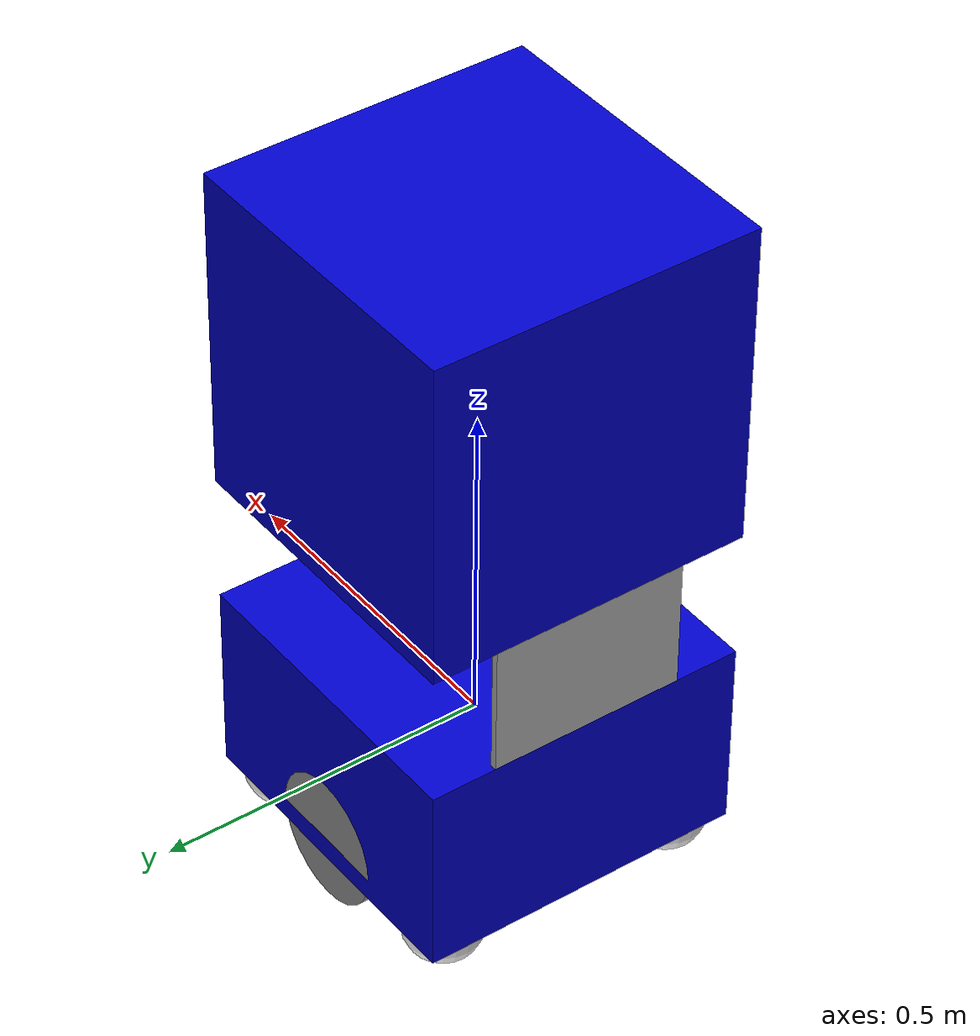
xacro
<?xml version='1.0'?>
<robot name="fyp_robot" xmlns:xacro="http://ros.org/wiki/xacro">
<!-- ixx ixy ixz
     ixy iyy iyz
     ixz iyz izz -->
       <xacro:include filename="$(find turtlebot3_description)/urdf/common_properties.xacro"/>

  <xacro:property name="base_xy" value="0.5" />
  <xacro:property name="b_base_z" value="0.3" />
  <xacro:property name="t_base_z" value="0.5" />
  <xacro:property name="wheeldiam" value="0.2" />
  <xacro:property name="casterradi" value="0.06" />
  <xacro:property name="wheellength" value="0.05" />
  <xacro:property name="pi" value="3.1415" />
  <xacro:property name="caster_mass" value="1" />
  <xacro:property name="wheel_mass" value="5" />
  <xacro:property name="base_mass" value="10" />

  <xacro:property name="base_xy2" value="${base_xy*base_xy}" />

  <!--default inertia macro-->
  <xacro:macro name="default_inertial" params="mass">
    <inertial>
      <mass value="${mass}" />
      <inertia ixx="1.0" ixy="0.0" ixz="0.0" iyy="1.0" iyz="0.0" izz="1.0" />
    </inertial>
  </xacro:macro>

  <!--solid cuboid inertia macro-->
  <xacro:macro name="cuboid_inertial" params="mass height">
    <inertial>
      <mass value="${mass}" />
      <inertia ixx="${(1/12)*mass*(height*height+base_xy2)}" ixy="0.0" ixz="0.0" iyy="${(1/12)*mass*(base_xy2*2)}" iyz="0.0" izz="${(1/12)*mass*(base_xy2+height*height)}" />
    </inertial>
  </xacro:macro>

<!-- Add the rectangular base -->
  <link name="base_link">
    <visual>
      <geometry>
        <box size="${base_xy} ${base_xy} ${b_base_z}"/>
      </geometry>
      <material name="blue"/>
    </visual>
    <collision>
      <geometry>
        <box size="${base_xy} ${base_xy} ${b_base_z}"/>
      </geometry>
    </collision>
    <xacro:cuboid_inertial mass="${base_mass}" height="${b_base_z}"/>
  </link>

<!-- add caster to each corner of the robot using a macro-->
  <xacro:macro name="caster" params="suffix prefix reflect1 reflect2">
    <link name="caster_${suffix}_${prefix}">
      <visual>
        <geometry>
          <sphere radius="${casterradi}"/>
        </geometry>
        <material name="white"/>
        <origin xyz="0 0 0" rpy="0 0 0"/>
      </visual>
      <collision>
       <geometry>
          <sphere radius="${casterradi}"/>
        </geometry>
        <origin xyz="0 0 0" rpy="0 0 0"/>
      </collision>
      <xacro:default_inertial mass="${caster_mass}"/>
    </link>
    <joint name="caster_${suffix}_${prefix}_joint" type="continuous">
      <parent link="base_link"/>
      <child link="caster_${suffix}_${prefix}"/>
      <origin xyz="${0.19*reflect1} ${0.19*reflect2} -0.15" rpy="0 0 0"/>
    </joint>
    <!-- This block provides the simulator (Gazebo) with information on a few additional physical properties. See http://gazebosim.org/tutorials/?tut=ros_urdf for more-->
    <gazebo reference="caster_${suffix}_${prefix}"> <!-- link name-->
      <mu1 value="0.1"/>
      <mu2 value="0.1"/>
      <kp value="10000000.0" />
      <kd value="1.0" />
      <material>Gazebo/Grey</material>
    </gazebo>
  <!-- This block connects the caster joint to an actuator (motor), which informs both simulation and visualization of the robot -->
  <transmission name="caster_${suffix}_${prefix}_trans">
    <type>transmission_interface/SimpleTransmission</type>
    <actuator name="$caster_${suffix}_${prefix}_wheel_motor">
      <mechanicalReduction>1</mechanicalReduction>
    </actuator>
    <joint name="caster_${suffix}_${prefix}_joint">
      <hardwareInterface>VelocityJointInterface</hardwareInterface>
    </joint>
  </transmission>
  </xacro:macro>
<!-- end of creating caster macro-->
  <xacro:caster suffix="front" prefix="left" reflect1="1" reflect2="1" />
  <xacro:caster suffix="front" prefix="right" reflect1="1" reflect2="-1" />
  <xacro:caster suffix="back" prefix="left" reflect1="-1" reflect2="1" />
  <xacro:caster suffix="back" prefix="right" reflect1="-1" reflect2="-1" />

<!-- add left & right wheels to the robot -->
  <xacro:macro name="wheels" params="prefix reflect">
    <link name="${prefix}_wheel">
      <visual>
        <geometry>
          <cylinder length="${wheellength}" radius="${wheeldiam/2}"/>
        </geometry>
        <origin xyz="0 0 0" rpy="${pi/2} 0 0"/>
      </visual>
      <collision>
       <geometry>
          <cylinder length="${wheellength}" radius="${wheeldiam/2}"/>
        </geometry>
        <origin xyz="0 0 0" rpy="${pi/2} 0 0"/>
      </collision>
      <xacro:default_inertial mass="${wheel_mass}"/>
    </link>
    <joint name="${prefix}_wheel_joint" type="continuous">
      <axis rpy="0 0 0" xyz="0 1 0"/>
      <parent link="base_link"/>
      <child link="${prefix}_wheel"/>
        <origin xyz="0 ${0.225*reflect} -0.115" rpy="0 0 0"/>
    </joint>
    <!-- This block provides the simulator (Gazebo) with information on a few additional physical properties. See http://gazebosim.org/tutorials/?tut=ros_urdf for more-->
    <gazebo reference="${prefix}_wheel"> <!-- link name-->
      <mu1 value="200.0"/>
      <mu2 value="100.0"/>
      <kp value="10000000.0" />
      <kd value="1.0" />
      <material>Gazebo/Grey</material>
    </gazebo>
    <!-- This block connects the wheel joint to an actuator (motor), which informs both simulation and visualization of the robot -->
  <transmission name="${prefix}_wheel_trans">
    <type>transmission_interface/SimpleTransmission</type>
    <actuator name="${prefix}_wheel_motor">
      <mechanicalReduction>1</mechanicalReduction>
    </actuator>
    <joint name="${prefix}_wheel_joint">
      <hardwareInterface>VelocityJointInterface</hardwareInterface>
    </joint>
  </transmission>
  </xacro:macro>

  <xacro:wheels prefix="left" reflect="1" />
  <xacro:wheels prefix="right" reflect="-1" />

<!-- add the top part to the robot -->
  <link name="base_back">
    <visual>
      <geometry>
        <box size="0.01 0.3 0.2"/>
      </geometry>
      <origin xyz="-0.245 0 0.25" rpy="0 0 0"/>
    </visual>
    <collision>
     <geometry>
        <box size="0.01 0.3 0.2"/>
      </geometry>
      <origin xyz="-0.245 0 0.25" rpy="0 0 0"/>
    </collision>
    <xacro:default_inertial mass="1"/>
  </link>
  <joint name="base_back_joint" type="fixed">
    <parent link="base_link"/>
    <child link="base_back"/>
    <origin xyz="0 0 0" rpy="0 0 0"/>
  </joint>

  <link name="base_top">
    <visual>
      <geometry>
        <box size="${base_xy} ${base_xy} ${t_base_z}"/>
      </geometry>
      <origin xyz="0 0 0.6" rpy="0 0 0"/>
      <material name="blue"/>
    </visual>
    <collision>
      <geometry>
        <box size="${base_xy} ${base_xy} ${t_base_z}"/>
      </geometry>
      <origin xyz="0 0 0.6" rpy="0 0 0"/>
    </collision>
    <xacro:cuboid_inertial mass="${base_mass}" height="${t_base_z}"/>
  </link>
  <joint name="base_top_joint" type="fixed">
    <parent link="base_back"/>
    <child link="base_top"/>
    <origin xyz="0 0 0" rpy="0 0 0"/>
  </joint>

  <!-- Gazebo plugin for ROS Control -->
  <gazebo>
    <plugin name="gazebo_ros_control" filename="libgazebo_ros_control.so">
      <robotNamespace>/</robotNamespace>
    </plugin>
  </gazebo>

</robot>

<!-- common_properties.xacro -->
<robot name="xacro_properties" xmlns:xacro="http://ros.org/wiki/xacro">

  <!-- Init colour -->
   <material name="red">
       <color rgba="1 0 0 1"/>
   </material>
   <material name="green">
       <color rgba="0 1 0 2"/>
   </material>
   <material name="grey">
       <color rgba="0.2 0.2 0.2 1"/>
   </material>

  <material name="blue">
    <color rgba="0 0 0.8 1"/>
  </material>
  <material name="black">
    <color rgba="0 0 0 1"/>
  </material>
  <material name="white">
    <color rgba="1 1 1 1"/>
  </material>

  <!--solid sphere inertia macro-->
  <xacro:macro name="sphere_inertial" params="mass height radius">
    <inertial>
      <mass value="${mass}" />
      <inertia ixx="${(2/5)*mass*radius*radius}" ixy="0.0" ixz="0.0" iyy="${(2/5)*mass*radius*radius}}" iyz="0.0" izz="${(2/5)*mass*radius*radius}" />
    </inertial>
  </xacro:macro>

</robot>
